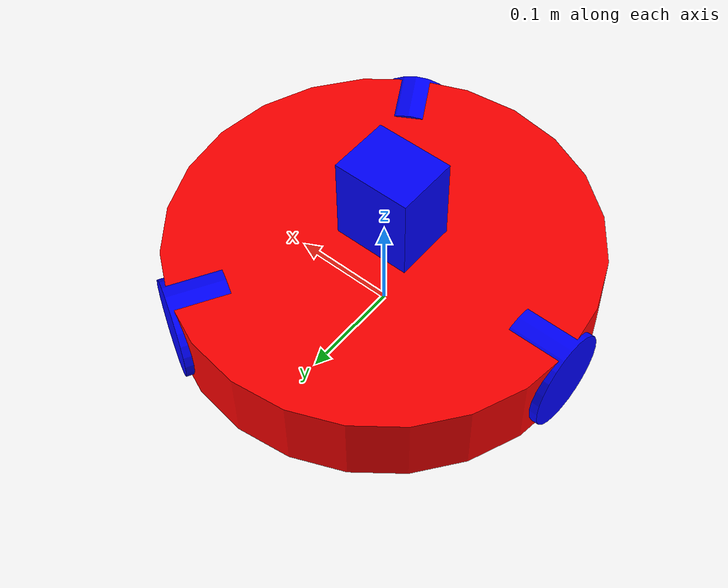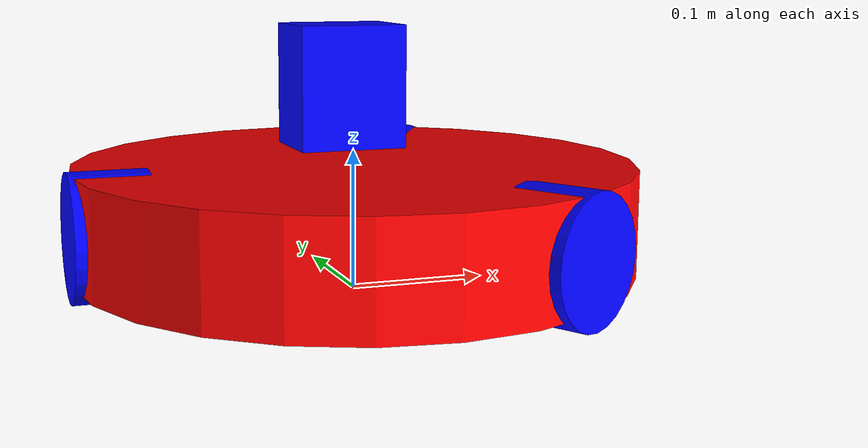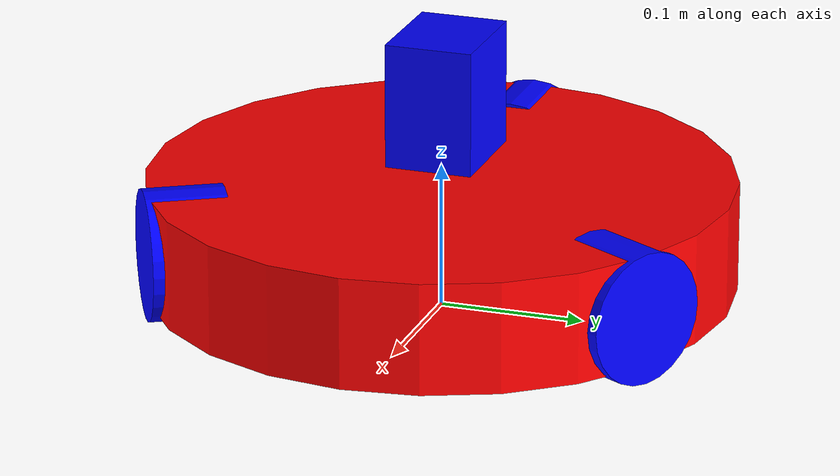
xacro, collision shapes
<?xml version="1.0"?>

<!--
@file thor.urdf.xacro
@brief Main xacro file for THOR robot
@author Frederick Wachter - wachterfreddy@gmail.com
@date Created: 2018-04-20
-->

<robot name="thor" xmlns:xacro="http://ros.org/wiki/xacro">

  <!--
    DEFAULT ARGUMENT DEFINITION
  -->

  <xacro:arg name="robot_name" default="thor"/>
  <xacro:arg name="hardware_interface" default="VelocityJointInterface"/>

  <!--
    FIXED FRAME DEFINITION
  -->

  <!-- Fixed odom dummy frame -->
  <link name="$(arg robot_name)_odom" />

  <!--
    IMPORTS
  -->

  <!-- Import constants and modeling macros -->
  <xacro:include filename="$(find thor_description)/urdf/thor_utilities.xacro"/>

  <!-- Import Gazebo tags -->
  <xacro:include filename="$(find thor_description)/urdf/thor_gazebo.xacro"/>

  <!-- Import THOR robot -->
  <xacro:include filename="$(find thor_description)/urdf/thor.xacro"/>

  <!--
    MACRO DEFINITIONS
  -->

  <!-- Define macros for swerve import -->
  <xacro:thor name="$(arg robot_name)" parent="$(arg robot_name)_odom" hardware_interface="$(arg hardware_interface)">
	  <origin xyz="0 0 0.053975" rpy="0 0 0"/>
  </xacro:thor>

  <xacro:thor_sensors name="thor"/>

</robot>

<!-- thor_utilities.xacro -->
<!--
@file thor_utilities.xacro
@brief Utilitiy properties for THOR robot
@author Frederick Wachter - wachterfreddy@gmail.com
@date Created: 2018-04-20
-->

<robot name="thor" xmlns:xacro="http://ros.org/wiki/xacro">

  <!-- Constants -->
  <xacro:property name="chassis_mass" value="1.666" />
  <xacro:property name="motor_mass" value="0.22578" />
  <xacro:property name="wheel_mass" value="0.346" />
  <xacro:property name="mechanical_reduction" value="1" />

  <!-- Common geometry properties -->
  <xacro:property name="chassis_geometry">
    <geometry>
      <mesh filename="package://thor_description/meshes/chassis_coarse.stl" />
    </geometry>
  </xacro:property>

  <xacro:property name="wheel_geometry">
    <geometry>
      <mesh filename="package://thor_description/meshes/wheel_coarse.stl" />
    </geometry>
  </xacro:property>

  <xacro:property name="lidar_geometry">
    <geometry>
      <mesh filename="package://sick_tim/meshes/sick_tim551.stl" />
    </geometry>
  </xacro:property>

  <xacro:property name="chassis_collision_geometry">
    <geometry>
      <cylinder length="0.0762" radius="0.2"/>
    </geometry>
  </xacro:property>

  <xacro:property name="wheel_collision_geometry">
    <geometry>
      <cylinder length="0.055" radius="0.045"/>
    </geometry>
  </xacro:property>

  <xacro:property name="lidar_collision_geometry">
    <geometry>
      <box size="0.075 0.06 0.08575"/>
    </geometry>
  </xacro:property>

  <!-- Color properties -->
  <xacro:property name="color_red">
    <material name="">
      <color rgba="1 0 0 1" />
    </material>
  </xacro:property>

  <xacro:property name="color_green">
    <material name="">
      <color rgba="0 1 0 1" />
    </material>
  </xacro:property>

  <xacro:property name="color_blue">
    <material name="">
      <color rgba="0 0 1 1" />
    </material>
  </xacro:property>

  <!-- Common visual and collision properties -->
  <xacro:property name="chassis_visual_collision">
    <visual>
      <origin xyz="0 0 0" rpy="0 0 0" />
      <xacro:insert_block name="chassis_geometry" />
      <xacro:insert_block name="color_red" />
    </visual>
    <collision>
      <origin xyz="0 0 0" rpy="0 0 0" />
      <xacro:insert_block name="chassis_collision_geometry" />
    </collision>
  </xacro:property>

  <xacro:property name="wheel_visual_collision">
    <visual>
      <origin xyz="0 0 0" rpy="0 0 0" />
      <xacro:insert_block name="wheel_geometry" />
      <xacro:insert_block name="color_blue" />
    </visual>
    <collision>
      <origin xyz="0 0.01 0" rpy="${pi/2} 0 0" />
      <xacro:insert_block name="wheel_collision_geometry" />
    </collision>
  </xacro:property>

  <xacro:property name="lidar_visual_collision">
    <visual>
      <origin xyz="0 0 0" rpy="0 0 0" />
      <xacro:insert_block name="lidar_geometry" />
      <xacro:insert_block name="color_blue" />
    </visual>
    <collision>
      <origin xyz="-0.009 0 -0.019585" rpy="0 0 0" />
      <xacro:insert_block name="lidar_collision_geometry" />
    </collision>
  </xacro:property>

  <!-- Common link/joint properties -->
  <xacro:property name="wheel_inertial_properties">
        <origin xyz="0 0 0" rpy="0 0 0" />
        <mass value="${wheel_mass}" />
        <inertia ixx="0.00026" ixy="0" ixz="0" iyy="0.00038" iyz="0" izz="0.00026" />
  </xacro:property>

  <xacro:macro name="wheel_joint" params="joint_name parent child x y theta hardware_interface">
    <joint name="${joint_name}" type="continuous">
      <origin xyz="${x} ${y} -0.00445" rpy="0 0 ${theta}" />
      <parent link="${parent}" />
      <child link="${child}" />
      <axis xyz="0 -1 0" />
    </joint>

    <transmission name="${joint_name}_trans">
      <type>transmission_interface/SimpleTransmission</type>
      <joint name="${joint_name}">
        <hardwareInterface>hardware_interface/${hardware_interface}</hardwareInterface>
      </joint>
      <actuator name="${joint_name}_motor">
        <mechanicalReduction>${mechanical_reduction}</mechanicalReduction>
        <hardwareInterface>hardware_interface/${hardware_interface}</hardwareInterface>
      </actuator>
    </transmission>
  </xacro:macro>

</robot>

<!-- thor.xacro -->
<!--
@file thor.xacro
@breif THOR robot xacro description
@author Frederick Wachter - wachterfreddy@gmail.com
@date Created: 2018-04-20
-->

<robot name="thor" xmlns:xacro="http://ros.org/wiki/xacro">

  <xacro:macro name="thor" params="parent name *origin hardware_interface">

    <!--
      DUMMY JOINT DEFINITION
    -->
    <joint name="${parent}_joint" type="fixed">
      <xacro:insert_block name="origin" />
      <parent link="${parent}" />
      <child link="${name}_body" />
    </joint>

    <!--
      CHASSIS DEFINITION
    -->
    <link name="${name}_body">
      <inertial>
        <origin xyz="0 0 0" rpy="0 0 0" />
        <mass value="${chassis_mass}" />
        <inertia ixx="0.020" ixy="0" ixz="0.0005" iyy="0.017" iyz="0" izz="0.0335" />
      </inertial>
      <xacro:insert_block name="chassis_visual_collision" />
    </link>

    <!--
      LEFT WHEEL DEFINITION
    -->

    <xacro:wheel_joint joint_name="${name}_left_wheel_joint" parent="${name}_body" child="${name}_left_wheel"
      x="0.09226" y="0.1598" theta="2.61799" hardware_interface="${hardware_interface}"/>

    <link name="${name}_left_wheel">
      <inertial>
        <xacro:insert_block name="wheel_inertial_properties" />
      </inertial>
      <xacro:insert_block name="wheel_visual_collision" />
    </link>

    <!--
      RIGHT WHEEL DEFINITION
    -->

    <xacro:wheel_joint joint_name="${name}_right_wheel_joint" parent="${name}_body" child="${name}_right_wheel"
      x="0.09226" y="-0.1598" theta="0.523599" hardware_interface="${hardware_interface}"/>

    <link name="${name}_right_wheel">
      <inertial>
        <xacro:insert_block name="wheel_inertial_properties" />
      </inertial>
      <xacro:insert_block name="wheel_visual_collision" />
    </link>

    <!--
      TAIL WHEEL DEFINITION
    -->

    <xacro:wheel_joint joint_name="${name}_tail_wheel_joint" parent="${name}_body" child="${name}_tail_wheel"
      x="-0.18452" y="0" theta="4.71239" hardware_interface="${hardware_interface}"/>

    <link name="${name}_tail_wheel">
      <inertial>
        <xacro:insert_block name="wheel_inertial_properties" />
      </inertial>
      <xacro:insert_block name="wheel_visual_collision" />
    </link>

    <!--
      SENSORS
    -->
    <joint name="${name}_laser_joint" type="fixed">
      <origin xyz="0 0 0.11296" rpy="0 0 0" />
      <parent link="${name}_body" />
      <child link="${name}_laser" />
      <axis xyz="0 0 " />
    </joint>

    <link name="${name}_laser">
      <inertial>
        <mass value="0.001" />
        <origin xyz="0 0 0" />
        <inertia ixx="0.0001" ixy="0.0" ixz="0.0" iyy="0.0001" iyz="0.0" izz="0.0001" />
      </inertial>
      <xacro:insert_block name="lidar_visual_collision" />
    </link>

    <joint name="${name}_imu_joint" type="fixed">
      <origin xyz="-0.07378 0.03088 0.04318" rpy="${pi} 0 -${pi/2}" />
      <parent link="${name}_body" />
      <child link="${name}_imu" />
      <axis xyz="0 0 " />
    </joint>

    <link name="${name}_imu">
      <inertial>
        <mass value="0.001" />
        <origin xyz="0 0 0" />
        <inertia ixx="0.0001" ixy="0.0" ixz="0.0" iyy="0.0001" iyz="0.0" izz="0.0001" />
      </inertial>
    </link>

  </xacro:macro>

</robot>
